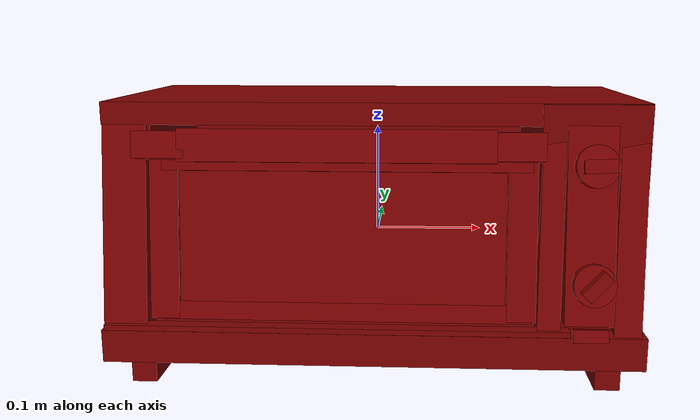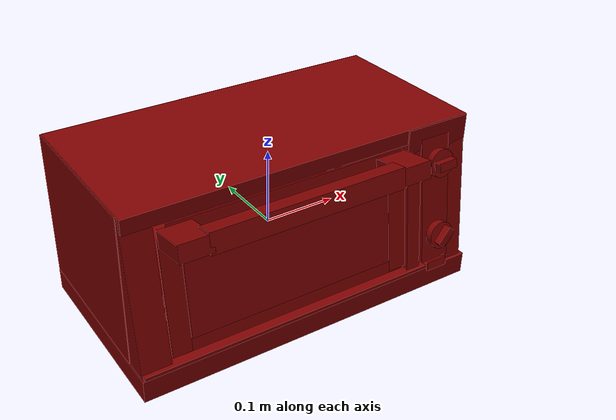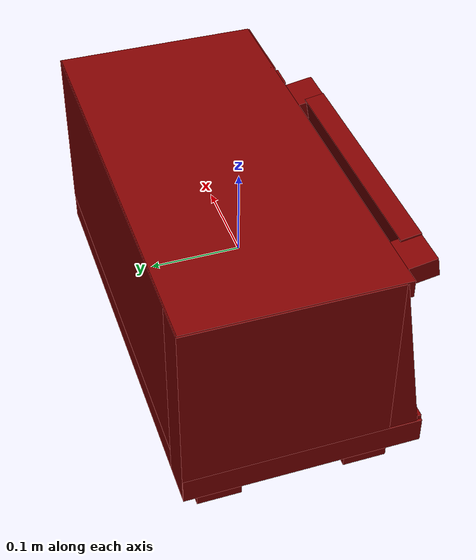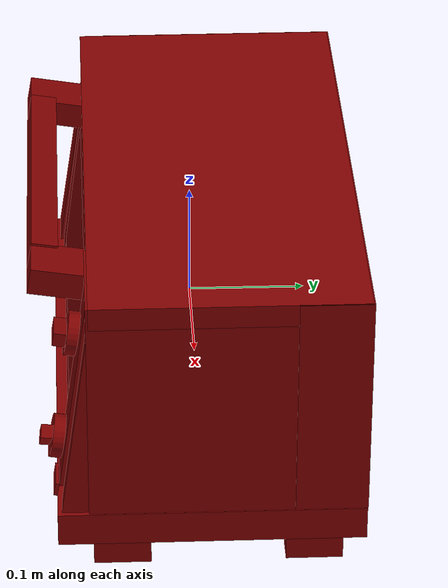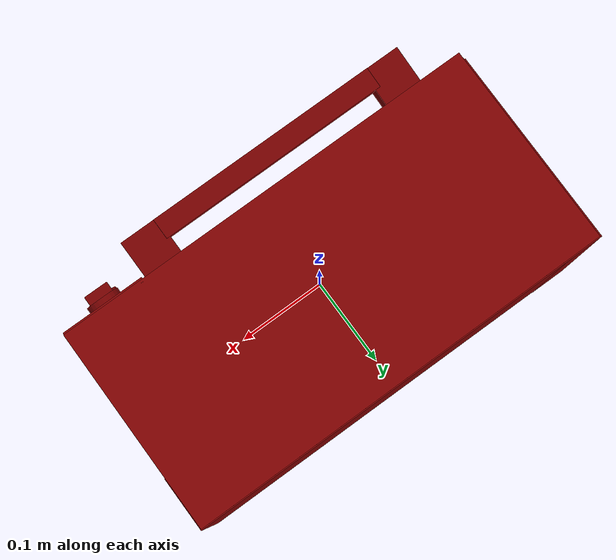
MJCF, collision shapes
<?xml version='1.0' encoding='UTF-8'?>
<mujoco model="model">
  <compiler angle="radian"/>
  <asset>
    <mesh file="visuals/Body001.obj" name="Body001_vis"/>
    <mesh file="visuals/Button001.obj" name="Button001_vis"/>
    <mesh file="visuals/Door001.obj" name="Door001_vis"/>
    <mesh file="visuals/Door001_Clear.obj" name="Door001_Clear_vis"/>
    <mesh file="visuals/Knob001.obj" name="Knob001_vis"/>
    <mesh file="visuals/Knob002.obj" name="Knob002_vis"/>
    <mesh file="visuals/Shelf001.obj" name="Shelf001_vis"/>
    <texture file="visuals/T_BC001.png" name="Body001_material" type="2d"/>
    <material name="Body001_material" rgba="1 1 1 1.0" texture="Body001_material" shininess="0.4472135901451111" specular="0.7"/>
    <texture file="visuals/T_BC001.png" name="Button001_material" type="2d"/>
    <material name="Button001_material" rgba="1 1 1 1.0" texture="Button001_material" shininess="0.4472135901451111" specular="0.3103448502657381"/>
    <texture file="visuals/T_BC001.png" name="Door001_material" type="2d"/>
    <material name="Door001_material" rgba="1 1 1 1.0" texture="Door001_material" shininess="0.4472135901451111" specular="0.3103448502657381"/>
    <texture file="visuals/T_BC001.png" name="Door001_Clear_material" type="2d"/>
    <material name="Door001_Clear_material" rgba="1 1 1 0.800000011920929" texture="Door001_Clear_material" shininess="0.4472135901451111" specular="0.3103448502657381"/>
    <texture file="visuals/T_BC001.png" name="Knob001_material" type="2d"/>
    <material name="Knob001_material" rgba="1 1 1 1.0" texture="Knob001_material" shininess="0.4472135901451111" specular="0.3103448502657381"/>
    <texture file="visuals/T_BC001.png" name="Knob002_material" type="2d"/>
    <material name="Knob002_material" rgba="1 1 1 1.0" texture="Knob002_material" shininess="0.4472135901451111" specular="0.3103448502657381"/>
    <texture file="visuals/T_BC001.png" name="Shelf001_material" type="2d"/>
    <material name="Shelf001_material" rgba="1 1 1 1.0" texture="Shelf001_material" shininess="0.4472135901451111" specular="0.3103448502657381"/>
  </asset>
  <default>
    <default class="visual">
      <geom conaffinity="0" contype="0" group="1" type="mesh"/>
    </default>
    <default class="collision">
      <geom group="0" rgba="0.5 0 0 0.5"/>
    </default>
    <default class="spawn">
      <geom group="0" rgba="1 1 1 0.5" contype="0" conaffinity="0"/>
      <site group="0" rgba="1 1 1 0.5"/>
    </default>
    <default class="region">
      <geom group="1" conaffinity="0" contype="0" rgba="0 1 0 0"/>
    </default>
  </default>
  <worldbody>
    <body>
      <body name="object">
        <geom mesh="Body001_vis" type="mesh" solimp="0.998 0.998 0.001" solref="0.001 1" density="100" friction="0.95 0.3 0.1" class="visual" material="Body001_material"/>
        <geom class="collision" type="box" pos="0.000686 0.108268 0.029986" size="0.23873665928840637 0.030213696882128716 0.09919781982898712" quat="1.0 0.0 0.0 0.0"/>
        <geom class="collision" type="box" pos="-0.032197 -0.112074 -0.081754" size="0.20524783432483673 0.007010402623564005 0.0167379230260849" quat="1.0 0.0 0.0 0.0"/>
        <geom class="collision" type="box" pos="-0.000215 0.009430 -0.084768" size="0.23979799449443817 0.12861356139183044 0.014741706661880016" quat="1.0 0.0 0.0 0.0"/>
        <geom class="collision" type="box" pos="-0.218580 0.027839 0.016071" size="0.021069828420877457 0.11065155267715454 0.11285706609487534" quat="1.0 0.0 0.0 0.0"/>
        <geom class="collision" type="box" pos="0.192043 0.011676 0.016071" size="0.04623604565858841 0.10498538613319397 0.11285706609487534" quat="1.0 0.0 0.0 0.0"/>
        <geom class="collision" type="box" pos="0.000381 0.022945 0.119684" size="0.2384311407804489 0.11436856538057327 0.009913308545947075" quat="1.0 0.0 0.0 0.0"/>
        <geom class="collision" type="box" pos="0.213299 0.095819 -0.114809" size="0.011492754332721233 0.023974789306521416 0.015316318720579147" quat="1.0 0.0 0.0 0.0"/>
        <geom class="collision" type="box" pos="-0.213164 0.095819 -0.114809" size="0.011492754332721233 0.023974789306521416 0.015316318720579147" quat="1.0 0.0 0.0 0.0"/>
        <geom class="collision" type="box" pos="-0.213164 -0.065545 -0.114809" size="0.011492754332721233 0.023974789306521416 0.015316318720579147" quat="1.0 0.0 0.0 0.0"/>
        <geom class="collision" type="box" pos="0.213299 -0.065545 -0.114809" size="0.011492754332721233 0.023974789306521416 0.015316318720579147" quat="1.0 0.0 0.0 0.0"/>
        <geom class="collision" type="box" pos="-0.191249 -0.011698 0.012850" size="0.0061254040338099 0.08170703798532486 0.005685448180884123" quat="1.0 0.0 0.0 0.0"/>
        <geom class="collision" type="box" pos="0.137866 -0.012928 -0.009118" size="0.006125267595052719 0.08311445266008377 0.005685448180884123" quat="1.0 0.0 0.0 0.0"/>
        <geom class="collision" type="box" pos="-0.191249 -0.012928 -0.009820" size="0.006125301122665405 0.08311484009027481 0.005685448180884123" quat="1.0 0.0 0.0 0.0"/>
        <geom class="collision" type="box" pos="0.137866 -0.011698 0.014526" size="0.0061254040338099 0.08170703798532486 0.005685448180884123" quat="1.0 0.0 0.0 0.0"/>
        <geom class="collision" type="box" pos="0.224486 -0.089244 0.014812" size="0.012030670419335365 0.014615795575082302 0.11281628906726837" quat="0.9977014064788818 -0.06640700250864029 0.006385390181094408 -0.011886697262525558"/>
        <geom class="collision" type="box" pos="0.155875 -0.089828 0.015839" size="0.010035064071416855 0.014076977036893368 0.11281241476535797" quat="0.9977014064788818 -0.06640700250864029 0.006385390181094408 -0.011886697262525558"/>
        <geom class="collision" type="box" pos="-0.219415 -0.085603 0.013887" size="0.019405046477913857 0.016000274568796158 0.11285706609487534" quat="0.9972575902938843 -0.07400870323181152 -0.0 0.0"/>
        <geom class="collision" type="box" pos="0.188761 -0.086901 0.031945" size="0.021439656615257263 0.017295105382800102 0.095307856798172" quat="0.9975953102111816 -0.06930797547101974 -0.0 0.0"/>
        <body name="Button001">
          <joint axis="0.0 1.0 0.0" pos="0.189593 -0.118950 -0.068070" limited="true" name="Button001_joint" range="0.0 0.0015" type="slide" damping="1" frictionloss="1" armature=".01" stiffness="0.05"/>
          <geom mesh="Button001_vis" type="mesh" solimp="0.998 0.998 0.001" solref="0.001 1" density="100" friction="0.95 0.3 0.1" class="visual" material="Button001_material"/>
          <geom class="collision" type="box" pos="0.189995 -0.119904 -0.067672" size="0.015358434058725834 0.001603512791916728 0.005804631393402815" quat="0.99686199426651 -0.07915915548801422 -1.7576863406535242e-17 -1.5752137258014866e-24"/>
        </body>
        <body name="Door001">
          <joint axis="1.0 0.0 0.0" pos="-0.026818 -0.108145 -0.063759" limited="true" name="Door001_joint" range="0.0 1.5707963267948966" type="hinge" damping="1" frictionloss="1" armature=".01" stiffness="0.03" springref="-1"/>
          <geom mesh="Door001_vis" type="mesh" solimp="0.998 0.998 0.001" solref="0.001 1" density="100" friction="0.95 0.3 0.1" class="visual" material="Door001_material"/>
          <geom class="collision" type="box" pos="0.121343 -0.114045 0.094563" size="0.021890953183174133 0.025094499811530113 0.011600500904023647" quat="0.9967019557952881 -0.08114931732416153 -1.8018744944122294e-17 -4.9555610977259785e-24"/>
          <geom class="collision" type="box" pos="-0.027549 -0.127582 0.096782" size="0.13131047785282135 0.011377752758562565 0.013575291261076927" quat="0.9967019557952881 -0.08114931732416153 -1.8018744944122294e-17 -4.9555610977259785e-24"/>
          <geom class="collision" type="box" pos="-0.174868 -0.114045 0.094563" size="0.02161538600921631 0.025094501674175262 0.011225162073969841" quat="0.9965037703514099 -0.0835433155298233 -0.0006798804388381541 0.0005293409340083599"/>
          <geom class="collision" type="box" pos="-0.023265 -0.089286 0.087278" size="0.16278094053268433 0.0013609224697574973 0.017425594851374626" quat="0.997551679611206 -0.06993357092142105 -2.0506859558928724e-17 -4.0534680523756936e-19"/>
          <geom class="collision" type="box" pos="-0.184357 -0.099081 0.014225" size="0.07540350407361984 0.0013609225861728191 0.012809425592422485" quat="0.7055616974830627 -0.04672013968229294 0.7055339813232422 -0.047135211527347565"/>
          <geom class="collision" type="box" pos="0.130838 -0.098729 0.015002" size="0.07540350407361984 0.0013609224697574973 0.012809425592422485" quat="0.7054510116577148 -0.04834715276956558 0.7056413292884827 -0.045515917241573334"/>
          <geom class="collision" type="box" pos="-0.023265 -0.107308 -0.052994" size="0.16278094053268433 0.0013609224697574973 0.008473441004753113" quat="0.997551679611206 -0.06993357092142105 -2.0506859558928724e-17 -4.0534680523756936e-19"/>
          <body name="Door001_Clear">
            <geom mesh="Door001_Clear_vis" type="mesh" solimp="0.998 0.998 0.001" solref="0.001 1" density="100" friction="0.95 0.3 0.1" class="visual" material="Door001_Clear_material"/>
            <geom class="collision" type="box" pos="-0.026549 -0.098911 0.012359" size="0.1435767263174057 0.001964004710316658 0.057988863438367844" quat="0.9979764223098755 -0.06358522176742554 -1.4118755446418504e-17 -1.202521814548543e-24"/>
          </body>
        </body>
        <body name="Knob001">
          <joint axis="-0.013878930360078812 0.990193247795105 -0.13901355862617493" pos="0.191113 -0.108465 0.078516" limited="true" name="Knob001_joint" range="0.0 5.410520681182422" type="hinge" damping="0.05" armature="0.001"/>
          <geom mesh="Knob001_vis" type="mesh" solimp="0.998 0.998 0.001" solref="0.001 1" density="100" friction="0.95 0.3 0.1" class="visual" material="Knob001_material"/>
          <geom class="collision" type="cylinder" pos="0.191058 -0.104602 0.078003" size="0.01845064014196396 0.004720819648355246" quat="0.7660444378852844 0.6427876353263855 0.0 0.0"/>
          <geom class="collision" type="box" pos="0.191476 -0.113567 0.079438" size="0.013559652492403984 0.0061185890808701515 0.005755146499723196" quat="0.9962519407272339 -0.0846356749534607 -0.0177927203476429 -0.001511567970737815"/>
        </body>
        <body name="Knob002">
          <joint axis="-0.015676535665988922 0.9894546270370483 -0.14399300515651703" pos="0.191719 -0.122104 -0.021972" limited="true" name="Knob002_joint" range="0.0 5.497787143782138" type="hinge" damping="0.05" armature="0.001"/>
          <geom mesh="Knob002_vis" type="mesh" solimp="0.998 0.998 0.001" solref="0.001 1" density="100" friction="0.95 0.3 0.1" class="visual" material="Knob002_material"/>
          <geom class="collision" type="cylinder" pos="0.191139 -0.118272 -0.022543" size="0.018387097865343094 0.004912965465337038" quat="0.7660444378852844 0.6427876353263855 0.0 0.0"/>
          <geom class="collision" type="box" pos="0.191808 -0.126231 -0.021009" size="0.013559652492403984 0.0061185890808701515 0.005755146965384483" quat="0.9190560579299927 -0.03859755024313927 -0.39161303639411926 0.022033169865608215"/>
        </body>
        <body name="Shelf001">
          <joint axis="0.0 -1.0 0.0" pos="-0.027334 -0.010218 0.002174" limited="true" name="Shelf001_joint" range="0.0 0.15" type="slide" damping="1" frictionloss="1" armature=".01" stiffness="0.05"/>
          <geom mesh="Shelf001_vis" type="mesh" solimp="0.998 0.998 0.001" solref="0.001 1" density="100" friction="0.95 0.3 0.1" class="visual" material="Shelf001_material"/>
          <geom class="collision" type="box" pos="-0.026799 -0.010615 0.002457" size="0.16731858253479004 0.08346723020076752 0.00440179044380784" quat="1.0 0.0 0.0 0.0"/>
        </body>
        <geom class="region" name="reg_main" type="box" pos="0.0 0.009632000000000002 0.0" size="0.240111 0.129057 0.130151"/>
        <geom class="region" name="reg_int" type="box" pos="-0.027383000000000005 -0.014034999999999999 0.019382499999999997" size="0.170883 0.089172 0.0816495"/>
      </body>
    </body>
  </worldbody>
  <actuator>
    <motor name="Button001_joint_actuator" joint="Button001_joint" gear="0.5"/>
    <motor name="Door001_joint_actuator" joint="Door001_joint" gear="50"/>
    <motor name="Knob001_joint_actuator" joint="Knob001_joint" gear="50"/>
    <motor name="Knob002_joint_actuator" joint="Knob002_joint" gear="50"/>
    <motor name="Shelf001_joint_actuator" joint="Shelf001_joint" gear="50"/>
  </actuator>
</mujoco>
